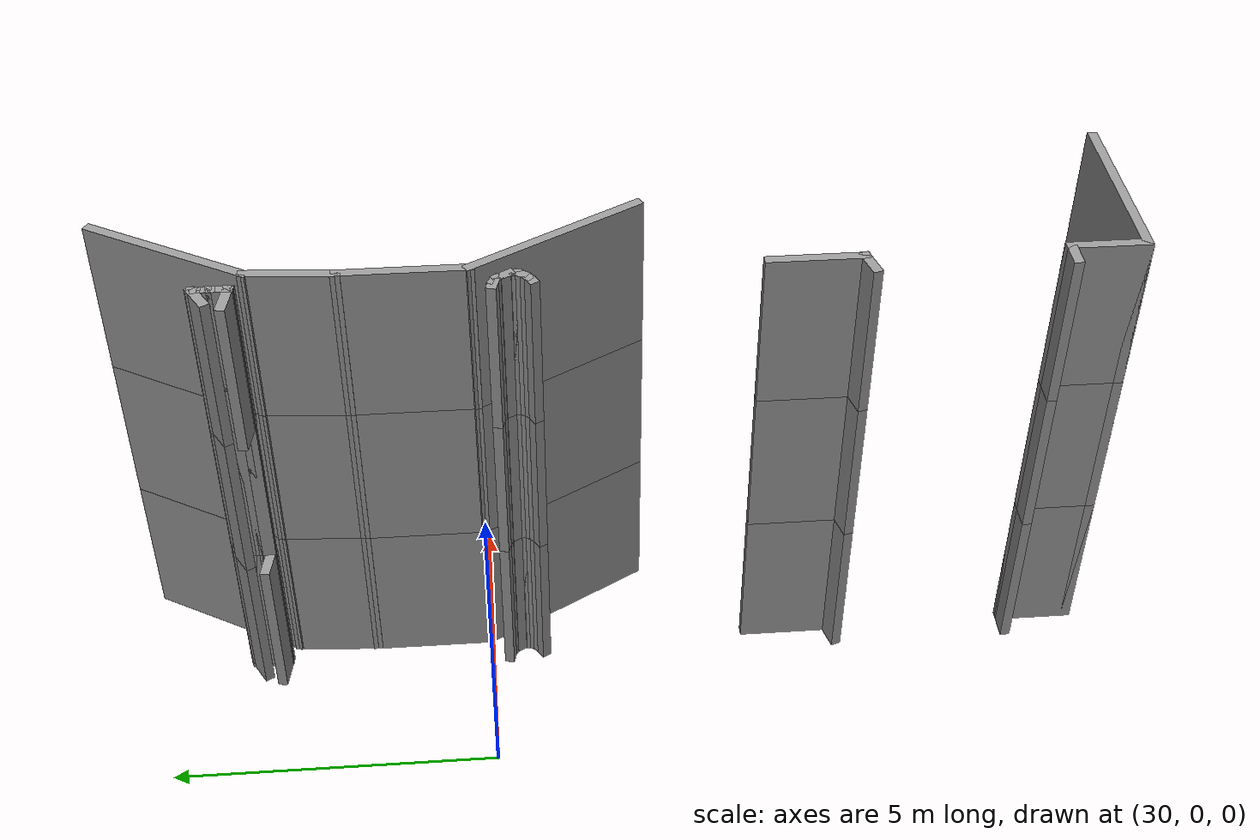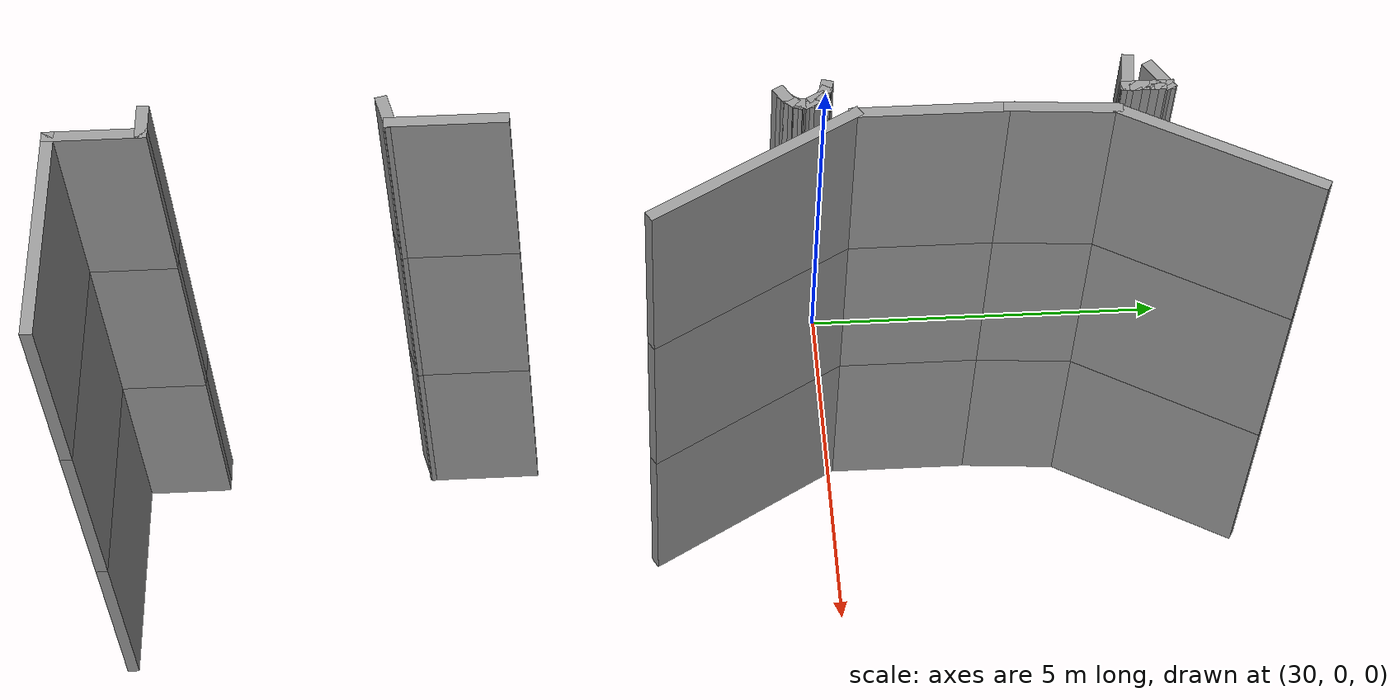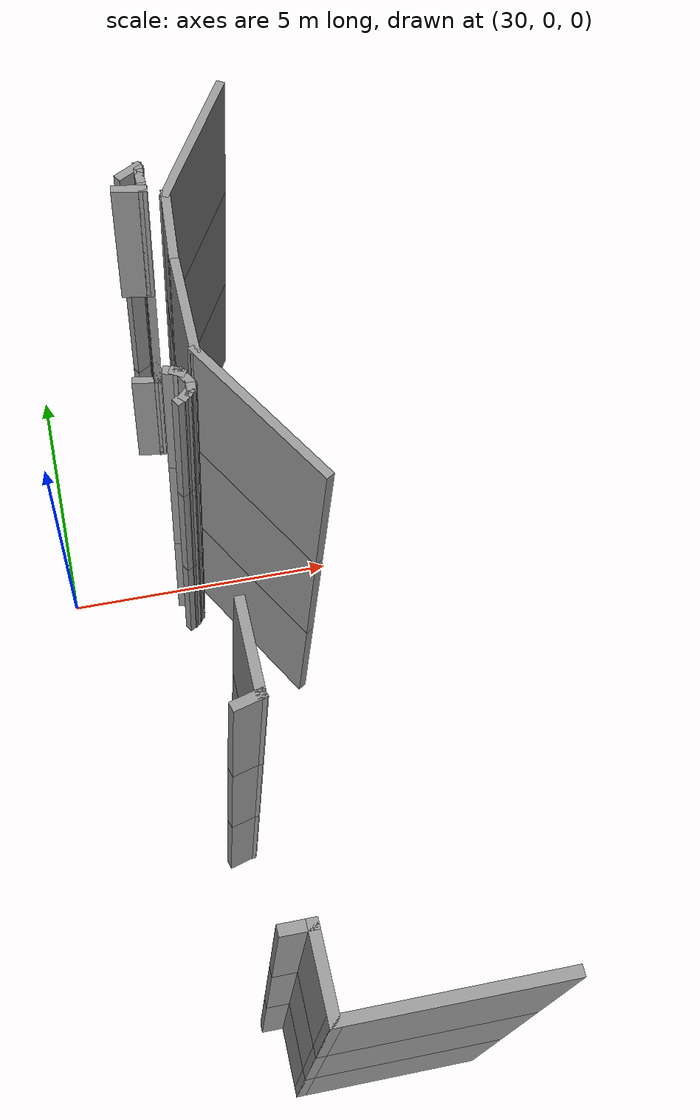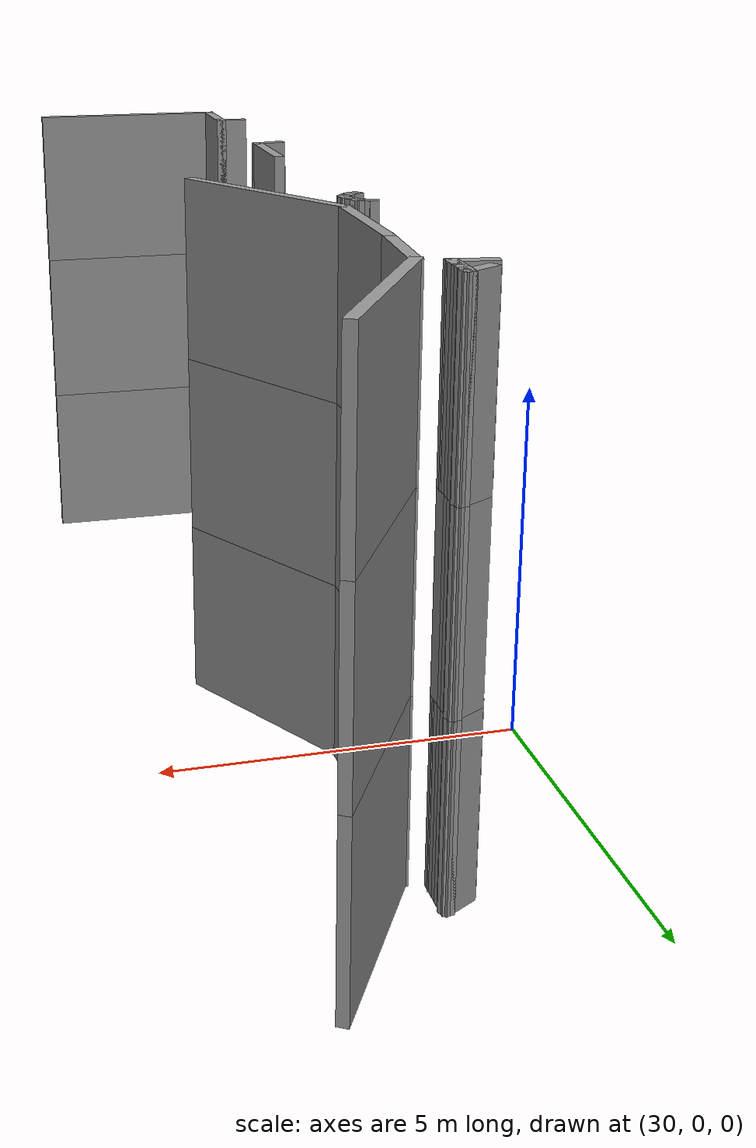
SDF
<sdf version="1.7">
 <model name="mapagazebo">
  <pose>-4.67869 9.01252 0 0 -0 0</pose>
  <link name="Wall_1215">
   <collision name="Wall_1215_Collision">
    <geometry><box><size>1.5 0.15 2.5</size></box></geometry>
    <pose>0 0 1.25 0 -0 0</pose>
   </collision>
   <visual name="Wall_1215_Visual">
    <pose>0 0 1.25 0 -0 0</pose>
    <geometry><box><size>1.5 0.15 2.5</size></box></geometry>
    <material>
     <script><uri>file://media/materials/scripts/gazebo.material</uri><name>Gazebo/Grey</name></script>
     <ambient>1 1 1 1</ambient>
    </material>
    <meta><layer>1</layer></meta>
   </visual>
   <pose>37.0654 -13.8315 2.5 0 -0 -1.5708</pose>
  </link>
  <link name="Wall_1216">
   <collision name="Wall_1216_Collision">
    <geometry><box><size>0.5 0.15 2.5</size></box></geometry>
    <pose>0 0 1.25 0 -0 0</pose>
   </collision>
   <visual name="Wall_1216_Visual">
    <pose>0 0 1.25 0 -0 0</pose>
    <geometry><box><size>0.5 0.15 2.5</size></box></geometry>
    <material>
     <script><uri>file://media/materials/scripts/gazebo.material</uri><name>Gazebo/Grey</name></script>
     <ambient>1 1 1 1</ambient>
    </material>
    <meta><layer>1</layer></meta>
   </visual>
   <pose>36.8964 -14.5518 2.5 0 -0 -2.87979</pose>
  </link>
  <link name="Wall_1218">
   <collision name="Wall_1218_Collision">
    <geometry><box><size>0.5 0.15 2.5</size></box></geometry>
    <pose>0 0 1.25 0 -0 0</pose>
   </collision>
   <visual name="Wall_1218_Visual">
    <pose>0 0 1.25 0 -0 0</pose>
    <geometry><box><size>0.5 0.15 2.5</size></box></geometry>
    <material>
     <script><uri>file://media/materials/scripts/gazebo.material</uri><name>Gazebo/Grey</name></script>
     <ambient>1 1 1 1</ambient>
    </material>
    <meta><layer>1</layer></meta>
   </visual>
   <pose>36.9023 -17.4471 2.5 0 -0 0</pose>
  </link>
  <link name="Wall_1219">
   <collision name="Wall_1219_Collision">
    <geometry><box><size>1.25 0.15 2.5</size></box></geometry>
    <pose>0 0 1.25 0 -0 0</pose>
   </collision>
   <visual name="Wall_1219_Visual">
    <pose>0 0 1.25 0 -0 0</pose>
    <geometry><box><size>1.25 0.15 2.5</size></box></geometry>
    <material>
     <script><uri>file://media/materials/scripts/gazebo.material</uri><name>Gazebo/Grey</name></script>
     <ambient>1 1 1 1</ambient>
    </material>
    <meta><layer>1</layer></meta>
   </visual>
   <pose>37.0773 -17.9971 2.5 0 -0 -1.5708</pose>
  </link>
  <link name="Wall_1220">
   <collision name="Wall_1220_Collision">
    <geometry><box><size>3 0.15 2.5</size></box></geometry>
    <pose>0 0 1.25 0 -0 0</pose>
   </collision>
   <visual name="Wall_1220_Visual">
    <pose>0 0 1.25 0 -0 0</pose>
    <geometry><box><size>3 0.15 2.5</size></box></geometry>
    <material>
     <script><uri>file://media/materials/scripts/gazebo.material</uri><name>Gazebo/Grey</name></script>
     <ambient>1 1 1 1</ambient>
    </material>
    <meta><layer>1</layer></meta>
   </visual>
   <pose>38.5023 -18.5471 2.5 0 -0 0</pose>
  </link>
  <link name="Wall_1287">
   <collision name="Wall_1287_Collision">
    <geometry><box><size>2 0.15 2.5</size></box></geometry>
    <pose>0 0 1.25 0 -0 0</pose>
   </collision>
   <visual name="Wall_1287_Visual">
    <pose>0 0 1.25 0 -0 0</pose>
    <geometry><box><size>2 0.15 2.5</size></box></geometry>
    <material>
     <script><uri>file://media/materials/scripts/gazebo.material</uri><name>Gazebo/Grey</name></script>
     <ambient>1 1 1 1</ambient>
    </material>
    <meta><layer>1</layer></meta>
   </visual>
   <pose>37.215 -8.04146 2.5 0 -0 -1.5708</pose>
  </link>
  <link name="Wall_1288">
   <collision name="Wall_1288_Collision">
    <geometry><box><size>3 0.15 2.5</size></box></geometry>
    <pose>0 0 1.25 0 -0 0</pose>
   </collision>
   <visual name="Wall_1288_Visual">
    <pose>0 0 1.25 0 -0 0</pose>
    <geometry><box><size>3 0.15 2.5</size></box></geometry>
    <material>
     <script><uri>file://media/materials/scripts/gazebo.material</uri><name>Gazebo/Grey</name></script>
     <ambient>1 1 1 1</ambient>
    </material>
    <meta><layer>1</layer></meta>
   </visual>
   <pose>37.9275 -10.2005 2.5 0 -0 -1.0472</pose>
  </link>
  <link name="Wall_1298">
   <collision name="Wall_1298_Collision">
    <geometry><box><size>2.75 0.15 2.5</size></box></geometry>
    <pose>0 0 1.25 0 -0 0</pose>
   </collision>
   <visual name="Wall_1298_Visual">
    <pose>0 0 1.25 0 -0 0</pose>
    <geometry><box><size>2.75 0.15 2.5</size></box></geometry>
    <material>
     <script><uri>file://media/materials/scripts/gazebo.material</uri><name>Gazebo/Grey</name></script>
     <ambient>1 1 1 1</ambient>
    </material>
    <meta><layer>1</layer></meta>
   </visual>
   <pose>37.9565 -4.7161 2.5 0 -0 -2.0944</pose>
  </link>
  <link name="Wall_1299">
   <collision name="Wall_1299_Collision">
    <geometry><box><size>1.4278 0.15 2.5</size></box></geometry>
    <pose>0 0 1.25 0 -0 0</pose>
   </collision>
   <visual name="Wall_1299_Visual">
    <pose>0 0 1.25 0 -0 0</pose>
    <geometry><box><size>1.4278 0.15 2.5</size></box></geometry>
    <material>
     <script><uri>file://media/materials/scripts/gazebo.material</uri><name>Gazebo/Grey</name></script>
     <ambient>1 1 1 1</ambient>
    </material>
    <meta><layer>1</layer></meta>
   </visual>
   <pose>37.2607 -6.4792 2.5 0 -0 -1.64247</pose>
  </link>
  <link name="Wall_1348">
   <collision name="Wall_1348_Collision">
    <geometry><box><size>0.5 0.15 2.5</size></box></geometry>
    <pose>0 0 1.25 0 -0 0</pose>
   </collision>
   <visual name="Wall_1348_Visual">
    <pose>0 0 1.25 0 -0 0</pose>
    <geometry><box><size>0.5 0.15 2.5</size></box></geometry>
    <material>
     <script><uri>file://media/materials/scripts/gazebo.material</uri><name>Gazebo/Grey</name></script>
     <ambient>1 1 1 1</ambient>
    </material>
    <meta><layer>1</layer></meta>
   </visual>
   <pose>36.8116 -5.25746 2.5 0 -0 0.523599</pose>
  </link>
  <link name="Wall_1349">
   <collision name="Wall_1349_Collision">
    <geometry><box><size>0.15 0.15 2.5</size></box></geometry>
    <pose>0 0 1.25 0 -0 0</pose>
   </collision>
   <visual name="Wall_1349_Visual">
    <pose>0 0 1.25 0 -0 0</pose>
    <geometry><box><size>0.15 0.15 2.5</size></box></geometry>
    <material>
     <script><uri>file://media/materials/scripts/gazebo.material</uri><name>Gazebo/Grey</name></script>
     <ambient>1 1 1 1</ambient>
    </material>
    <meta><layer>1</layer></meta>
   </visual>
   <pose>36.9632 -5.16996 2.5 0 -0 0</pose>
  </link>
  <link name="Wall_1350">
   <collision name="Wall_1350_Collision">
    <geometry><box><size>0.25 0.15 2.5</size></box></geometry>
    <pose>0 0 1.25 0 -0 0</pose>
   </collision>
   <visual name="Wall_1350_Visual">
    <pose>0 0 1.25 0 -0 0</pose>
    <geometry><box><size>0.25 0.15 2.5</size></box></geometry>
    <material>
     <script><uri>file://media/materials/scripts/gazebo.material</uri><name>Gazebo/Grey</name></script>
     <ambient>1 1 1 1</ambient>
    </material>
    <meta><layer>1</layer></meta>
   </visual>
   <pose>36.9632 -5.21996 2.5 0 -0 -1.5708</pose>
  </link>
  <link name="Wall_1351">
   <collision name="Wall_1351_Collision">
    <geometry><box><size>0.25 0.15 2.5</size></box></geometry>
    <pose>0 0 1.25 0 -0 0</pose>
   </collision>
   <visual name="Wall_1351_Visual">
    <pose>0 0 1.25 0 -0 0</pose>
    <geometry><box><size>0.25 0.15 2.5</size></box></geometry>
    <material>
     <script><uri>file://media/materials/scripts/gazebo.material</uri><name>Gazebo/Grey</name></script>
     <ambient>1 1 1 1</ambient>
    </material>
    <meta><layer>1</layer></meta>
   </visual>
   <pose>36.9632 -5.31996 2.5 0 -0 -1.5708</pose>
  </link>
  <link name="Wall_1352">
   <collision name="Wall_1352_Collision">
    <geometry><box><size>0.25 0.15 2.5</size></box></geometry>
    <pose>0 0 1.25 0 -0 0</pose>
   </collision>
   <visual name="Wall_1352_Visual">
    <pose>0 0 1.25 0 -0 0</pose>
    <geometry><box><size>0.25 0.15 2.5</size></box></geometry>
    <material>
     <script><uri>file://media/materials/scripts/gazebo.material</uri><name>Gazebo/Grey</name></script>
     <ambient>1 1 1 1</ambient>
    </material>
    <meta><layer>1</layer></meta>
   </visual>
   <pose>36.9632 -5.41996 2.5 0 -0 -1.5708</pose>
  </link>
  <link name="Wall_1353">
   <collision name="Wall_1353_Collision">
    <geometry><box><size>0.25 0.15 2.5</size></box></geometry>
    <pose>0 0 1.25 0 -0 0</pose>
   </collision>
   <visual name="Wall_1353_Visual">
    <pose>0 0 1.25 0 -0 0</pose>
    <geometry><box><size>0.25 0.15 2.5</size></box></geometry>
    <material>
     <script><uri>file://media/materials/scripts/gazebo.material</uri><name>Gazebo/Grey</name></script>
     <ambient>1 1 1 1</ambient>
    </material>
    <meta><layer>1</layer></meta>
   </visual>
   <pose>36.9632 -5.51996 2.5 0 -0 -1.5708</pose>
  </link>
  <link name="Wall_1354">
   <collision name="Wall_1354_Collision">
    <geometry><box><size>0.25 0.15 2.5</size></box></geometry>
    <pose>0 0 1.25 0 -0 0</pose>
   </collision>
   <visual name="Wall_1354_Visual">
    <pose>0 0 1.25 0 -0 0</pose>
    <geometry><box><size>0.25 0.15 2.5</size></box></geometry>
    <material>
     <script><uri>file://media/materials/scripts/gazebo.material</uri><name>Gazebo/Grey</name></script>
     <ambient>1 1 1 1</ambient>
    </material>
    <meta><layer>1</layer></meta>
   </visual>
   <pose>36.9632 -5.61996 2.5 0 -0 -1.5708</pose>
  </link>
  <link name="Wall_1355">
   <collision name="Wall_1355_Collision">
    <geometry><box><size>0.15 0.15 2.5</size></box></geometry>
    <pose>0 0 1.25 0 -0 0</pose>
   </collision>
   <visual name="Wall_1355_Visual">
    <pose>0 0 1.25 0 -0 0</pose>
    <geometry><box><size>0.15 0.15 2.5</size></box></geometry>
    <material>
     <script><uri>file://media/materials/scripts/gazebo.material</uri><name>Gazebo/Grey</name></script>
     <ambient>1 1 1 1</ambient>
    </material>
    <meta><layer>1</layer></meta>
   </visual>
   <pose>36.9632 -5.66996 2.5 0 -0 0</pose>
  </link>
  <link name="Wall_1356">
   <collision name="Wall_1356_Collision">
    <geometry><box><size>0.15 0.15 2.5</size></box></geometry>
    <pose>0 0 1.25 0 -0 0</pose>
   </collision>
   <visual name="Wall_1356_Visual">
    <pose>0 0 1.25 0 -0 0</pose>
    <geometry><box><size>0.15 0.15 2.5</size></box></geometry>
    <material>
     <script><uri>file://media/materials/scripts/gazebo.material</uri><name>Gazebo/Grey</name></script>
     <ambient>1 1 1 1</ambient>
    </material>
    <meta><layer>1</layer></meta>
   </visual>
   <pose>36.9632 -5.66996 2.5 0 -0 0</pose>
  </link>
  <link name="Wall_1365">
   <collision name="Wall_1365_Collision">
    <geometry><box><size>0.25 0.15 2.5</size></box></geometry>
    <pose>0 0 1.25 0 -0 0</pose>
   </collision>
   <visual name="Wall_1365_Visual">
    <pose>0 0 1.25 0 -0 0</pose>
    <geometry><box><size>0.25 0.15 2.5</size></box></geometry>
    <material>
     <script><uri>file://media/materials/scripts/gazebo.material</uri><name>Gazebo/Grey</name></script>
     <ambient>1 1 1 1</ambient>
    </material>
    <meta><layer>1</layer></meta>
   </visual>
   <pose>36.802 -9.28459 2.5 0 -0 -0.261799</pose>
  </link>
  <link name="Wall_1366">
   <collision name="Wall_1366_Collision">
    <geometry><box><size>0.25 0.15 2.5</size></box></geometry>
    <pose>0 0 1.25 0 -0 0</pose>
   </collision>
   <visual name="Wall_1366_Visual">
    <pose>0 0 1.25 0 -0 0</pose>
    <geometry><box><size>0.25 0.15 2.5</size></box></geometry>
    <material>
     <script><uri>file://media/materials/scripts/gazebo.material</uri><name>Gazebo/Grey</name></script>
     <ambient>1 1 1 1</ambient>
    </material>
    <meta><layer>1</layer></meta>
   </visual>
   <pose>36.8936 -9.32253 2.5 0 -0 -0.523599</pose>
  </link>
  <link name="Wall_1367">
   <collision name="Wall_1367_Collision">
    <geometry><box><size>0.25 0.15 2.5</size></box></geometry>
    <pose>0 0 1.25 0 -0 0</pose>
   </collision>
   <visual name="Wall_1367_Visual">
    <pose>0 0 1.25 0 -0 0</pose>
    <geometry><box><size>0.25 0.15 2.5</size></box></geometry>
    <material>
     <script><uri>file://media/materials/scripts/gazebo.material</uri><name>Gazebo/Grey</name></script>
     <ambient>1 1 1 1</ambient>
    </material>
    <meta><layer>1</layer></meta>
   </visual>
   <pose>36.9619 -9.39083 2.5 0 -0 -1.0472</pose>
  </link>
  <link name="Wall_1368">
   <collision name="Wall_1368_Collision">
    <geometry><box><size>0.25 0.15 2.5</size></box></geometry>
    <pose>0 0 1.25 0 -0 0</pose>
   </collision>
   <visual name="Wall_1368_Visual">
    <pose>0 0 1.25 0 -0 0</pose>
    <geometry><box><size>0.25 0.15 2.5</size></box></geometry>
    <material>
     <script><uri>file://media/materials/scripts/gazebo.material</uri><name>Gazebo/Grey</name></script>
     <ambient>1 1 1 1</ambient>
    </material>
    <meta><layer>1</layer></meta>
   </visual>
   <pose>37.0119 -9.47744 2.5 0 -0 -1.0472</pose>
  </link>
  <link name="Wall_1369">
   <collision name="Wall_1369_Collision">
    <geometry><box><size>0.25 0.15 2.5</size></box></geometry>
    <pose>0 0 1.25 0 -0 0</pose>
   </collision>
   <visual name="Wall_1369_Visual">
    <pose>0 0 1.25 0 -0 0</pose>
    <geometry><box><size>0.25 0.15 2.5</size></box></geometry>
    <material>
     <script><uri>file://media/materials/scripts/gazebo.material</uri><name>Gazebo/Grey</name></script>
     <ambient>1 1 1 1</ambient>
    </material>
    <meta><layer>1</layer></meta>
   </visual>
   <pose>37.0369 -9.57074 2.5 0 -0 -1.5708</pose>
  </link>
  <link name="Wall_1370">
   <collision name="Wall_1370_Collision">
    <geometry><box><size>0.15 0.15 2.5</size></box></geometry>
    <pose>0 0 1.25 0 -0 0</pose>
   </collision>
   <visual name="Wall_1370_Visual">
    <pose>0 0 1.25 0 -0 0</pose>
    <geometry><box><size>0.15 0.15 2.5</size></box></geometry>
    <material>
     <script><uri>file://media/materials/scripts/gazebo.material</uri><name>Gazebo/Grey</name></script>
     <ambient>1 1 1 1</ambient>
    </material>
    <meta><layer>1</layer></meta>
   </visual>
   <pose>37.0369 -9.62074 2.5 0 -0 0</pose>
  </link>
  <link name="Wall_1371">
   <collision name="Wall_1371_Collision">
    <geometry><box><size>0.25 0.15 2.5</size></box></geometry>
    <pose>0 0 1.25 0 -0 0</pose>
   </collision>
   <visual name="Wall_1371_Visual">
    <pose>0 0 1.25 0 -0 0</pose>
    <geometry><box><size>0.25 0.15 2.5</size></box></geometry>
    <material>
     <script><uri>file://media/materials/scripts/gazebo.material</uri><name>Gazebo/Grey</name></script>
     <ambient>1 1 1 1</ambient>
    </material>
    <meta><layer>1</layer></meta>
   </visual>
   <pose>37.0119 -9.66404 2.5 0 -0 -2.0944</pose>
  </link>
  <link name="Wall_1372">
   <collision name="Wall_1372_Collision">
    <geometry><box><size>0.25 0.15 2.5</size></box></geometry>
    <pose>0 0 1.25 0 -0 0</pose>
   </collision>
   <visual name="Wall_1372_Visual">
    <pose>0 0 1.25 0 -0 0</pose>
    <geometry><box><size>0.25 0.15 2.5</size></box></geometry>
    <material>
     <script><uri>file://media/materials/scripts/gazebo.material</uri><name>Gazebo/Grey</name></script>
     <ambient>1 1 1 1</ambient>
    </material>
    <meta><layer>1</layer></meta>
   </visual>
   <pose>36.9515 -9.7427 2.5 0 -0 -2.35619</pose>
  </link>
  <link name="Wall_1373">
   <collision name="Wall_1373_Collision">
    <geometry><box><size>0.25 0.15 2.5</size></box></geometry>
    <pose>0 0 1.25 0 -0 0</pose>
   </collision>
   <visual name="Wall_1373_Visual">
    <pose>0 0 1.25 0 -0 0</pose>
    <geometry><box><size>0.25 0.15 2.5</size></box></geometry>
    <material>
     <script><uri>file://media/materials/scripts/gazebo.material</uri><name>Gazebo/Grey</name></script>
     <ambient>1 1 1 1</ambient>
    </material>
    <meta><layer>1</layer></meta>
   </visual>
   <pose>36.8729 -9.80305 2.5 0 -0 -2.61799</pose>
  </link>
  <link name="Wall_1839">
   <collision name="Wall_1839_Collision">
    <geometry><box><size>1.5 0.15 2.5</size></box></geometry>
    <pose>0 0 1.25 0 -0 0</pose>
   </collision>
   <visual name="Wall_1839_Visual">
    <pose>0 0 1.25 0 -0 0</pose>
    <geometry><box><size>1.5 0.15 2.5</size></box></geometry>
    <material>
     <script><uri>file://media/materials/scripts/gazebo.material</uri><name>Gazebo/Grey</name></script>
     <ambient>1 1 1 1</ambient>
    </material>
    <meta><layer>2</layer></meta>
   </visual>
   <pose>37.0654 -13.8315 5 0 -0 -1.5708</pose>
  </link>
  <link name="Wall_1840">
   <collision name="Wall_1840_Collision">
    <geometry><box><size>0.5 0.15 2.5</size></box></geometry>
    <pose>0 0 1.25 0 -0 0</pose>
   </collision>
   <visual name="Wall_1840_Visual">
    <pose>0 0 1.25 0 -0 0</pose>
    <geometry><box><size>0.5 0.15 2.5</size></box></geometry>
    <material>
     <script><uri>file://media/materials/scripts/gazebo.material</uri><name>Gazebo/Grey</name></script>
     <ambient>1 1 1 1</ambient>
    </material>
    <meta><layer>2</layer></meta>
   </visual>
   <pose>36.8964 -14.5518 5 0 -0 -2.87979</pose>
  </link>
  <link name="Wall_1842">
   <collision name="Wall_1842_Collision">
    <geometry><box><size>0.5 0.15 2.5</size></box></geometry>
    <pose>0 0 1.25 0 -0 0</pose>
   </collision>
   <visual name="Wall_1842_Visual">
    <pose>0 0 1.25 0 -0 0</pose>
    <geometry><box><size>0.5 0.15 2.5</size></box></geometry>
    <material>
     <script><uri>file://media/materials/scripts/gazebo.material</uri><name>Gazebo/Grey</name></script>
     <ambient>1 1 1 1</ambient>
    </material>
    <meta><layer>2</layer></meta>
   </visual>
   <pose>36.9023 -17.4471 5 0 -0 0</pose>
  </link>
  <link name="Wall_1843">
   <collision name="Wall_1843_Collision">
    <geometry><box><size>1.25 0.15 2.5</size></box></geometry>
    <pose>0 0 1.25 0 -0 0</pose>
   </collision>
   <visual name="Wall_1843_Visual">
    <pose>0 0 1.25 0 -0 0</pose>
    <geometry><box><size>1.25 0.15 2.5</size></box></geometry>
    <material>
     <script><uri>file://media/materials/scripts/gazebo.material</uri><name>Gazebo/Grey</name></script>
     <ambient>1 1 1 1</ambient>
    </material>
    <meta><layer>2</layer></meta>
   </visual>
   <pose>37.0773 -17.9971 5 0 -0 -1.5708</pose>
  </link>
  <link name="Wall_1844">
   <collision name="Wall_1844_Collision">
    <geometry><box><size>3 0.15 2.5</size></box></geometry>
    <pose>0 0 1.25 0 -0 0</pose>
   </collision>
   <visual name="Wall_1844_Visual">
    <pose>0 0 1.25 0 -0 0</pose>
    <geometry><box><size>3 0.15 2.5</size></box></geometry>
    <material>
     <script><uri>file://media/materials/scripts/gazebo.material</uri><name>Gazebo/Grey</name></script>
     <ambient>1 1 1 1</ambient>
    </material>
    <meta><layer>2</layer></meta>
   </visual>
   <pose>38.5023 -18.5471 5 0 -0 0</pose>
  </link>
  <link name="Wall_1911">
   <collision name="Wall_1911_Collision">
    <geometry><box><size>2 0.15 2.5</size></box></geometry>
    <pose>0 0 1.25 0 -0 0</pose>
   </collision>
   <visual name="Wall_1911_Visual">
    <pose>0 0 1.25 0 -0 0</pose>
    <geometry><box><size>2 0.15 2.5</size></box></geometry>
    <material>
     <script><uri>file://media/materials/scripts/gazebo.material</uri><name>Gazebo/Grey</name></script>
     <ambient>1 1 1 1</ambient>
    </material>
    <meta><layer>2</layer></meta>
   </visual>
   <pose>37.215 -8.04146 5 0 -0 -1.5708</pose>
  </link>
  <link name="Wall_1912">
   <collision name="Wall_1912_Collision">
    <geometry><box><size>3 0.15 2.5</size></box></geometry>
    <pose>0 0 1.25 0 -0 0</pose>
   </collision>
   <visual name="Wall_1912_Visual">
    <pose>0 0 1.25 0 -0 0</pose>
    <geometry><box><size>3 0.15 2.5</size></box></geometry>
    <material>
     <script><uri>file://media/materials/scripts/gazebo.material</uri><name>Gazebo/Grey</name></script>
     <ambient>1 1 1 1</ambient>
    </material>
    <meta><layer>2</layer></meta>
   </visual>
   <pose>37.9275 -10.2005 5 0 -0 -1.0472</pose>
  </link>
  <link name="Wall_1922">
   <collision name="Wall_1922_Collision">
    <geometry><box><size>2.75 0.15 2.5</size></box></geometry>
    <pose>0 0 1.25 0 -0 0</pose>
   </collision>
   <visual name="Wall_1922_Visual">
    <pose>0 0 1.25 0 -0 0</pose>
    <geometry><box><size>2.75 0.15 2.5</size></box></geometry>
    <material>
     <script><uri>file://media/materials/scripts/gazebo.material</uri><name>Gazebo/Grey</name></script>
     <ambient>1 1 1 1</ambient>
    </material>
    <meta><layer>2</layer></meta>
   </visual>
   <pose>37.9565 -4.7161 5 0 -0 -2.0944</pose>
  </link>
  <link name="Wall_1923">
   <collision name="Wall_1923_Collision">
    <geometry><box><size>1.4278 0.15 2.5</size></box></geometry>
    <pose>0 0 1.25 0 -0 0</pose>
   </collision>
   <visual name="Wall_1923_Visual">
    <pose>0 0 1.25 0 -0 0</pose>
    <geometry><box><size>1.4278 0.15 2.5</size></box></geometry>
    <material>
     <script><uri>file://media/materials/scripts/gazebo.material</uri><name>Gazebo/Grey</name></script>
     <ambient>1 1 1 1</ambient>
    </material>
    <meta><layer>2</layer></meta>
   </visual>
   <pose>37.2607 -6.4792 5 0 -0 -1.64247</pose>
  </link>
  <link name="Wall_1972">
   <collision name="Wall_1972_Collision">
    <geometry><box><size>0.5 0.15 2.5</size></box></geometry>
    <pose>0 0 1.25 0 -0 0</pose>
   </collision>
   <visual name="Wall_1972_Visual">
    <pose>0 0 1.25 0 -0 0</pose>
    <geometry><box><size>0.5 0.15 2.5</size></box></geometry>
    <material>
     <script><uri>file://media/materials/scripts/gazebo.material</uri><name>Gazebo/Grey</name></script>
     <ambient>1 1 1 1</ambient>
    </material>
    <meta><layer>2</layer></meta>
   </visual>
   <pose>36.8116 -5.25746 5 0 -0 0.523599</pose>
  </link>
  <link name="Wall_1973">
   <collision name="Wall_1973_Collision">
    <geometry><box><size>0.15 0.15 2.5</size></box></geometry>
    <pose>0 0 1.25 0 -0 0</pose>
   </collision>
   <visual name="Wall_1973_Visual">
    <pose>0 0 1.25 0 -0 0</pose>
    <geometry><box><size>0.15 0.15 2.5</size></box></geometry>
    <material>
     <script><uri>file://media/materials/scripts/gazebo.material</uri><name>Gazebo/Grey</name></script>
     <ambient>1 1 1 1</ambient>
    </material>
    <meta><layer>2</layer></meta>
   </visual>
   <pose>36.9632 -5.16996 5 0 -0 0</pose>
  </link>
  <link name="Wall_1974">
   <collision name="Wall_1974_Collision">
    <geometry><box><size>0.25 0.15 2.5</size></box></geometry>
    <pose>0 0 1.25 0 -0 0</pose>
   </collision>
   <visual name="Wall_1974_Visual">
    <pose>0 0 1.25 0 -0 0</pose>
    <geometry><box><size>0.25 0.15 2.5</size></box></geometry>
    <material>
     <script><uri>file://media/materials/scripts/gazebo.material</uri><name>Gazebo/Grey</name></script>
     <ambient>1 1 1 1</ambient>
    </material>
    <meta><layer>2</layer></meta>
   </visual>
   <pose>36.9632 -5.21996 5 0 -0 -1.5708</pose>
  </link>
  <link name="Wall_1975">
   <collision name="Wall_1975_Collision">
    <geometry><box><size>0.25 0.15 2.5</size></box></geometry>
    <pose>0 0 1.25 0 -0 0</pose>
   </collision>
   <visual name="Wall_1975_Visual">
    <pose>0 0 1.25 0 -0 0</pose>
    <geometry><box><size>0.25 0.15 2.5</size></box></geometry>
    <material>
     <script><uri>file://media/materials/scripts/gazebo.material</uri><name>Gazebo/Grey</name></script>
     <ambient>1 1 1 1</ambient>
    </material>
    <meta><layer>2</layer></meta>
   </visual>
   <pose>36.9632 -5.31996 5 0 -0 -1.5708</pose>
  </link>
  <link name="Wall_1976">
   <collision name="Wall_1976_Collision">
    <geometry><box><size>0.25 0.15 2.5</size></box></geometry>
    <pose>0 0 1.25 0 -0 0</pose>
   </collision>
   <visual name="Wall_1976_Visual">
    <pose>0 0 1.25 0 -0 0</pose>
    <geometry><box><size>0.25 0.15 2.5</size></box></geometry>
    <material>
     <script><uri>file://media/materials/scripts/gazebo.material</uri><name>Gazebo/Grey</name></script>
     <ambient>1 1 1 1</ambient>
    </material>
    <meta><layer>2</layer></meta>
   </visual>
   <pose>36.9632 -5.41996 5 0 -0 -1.5708</pose>
  </link>
  <link name="Wall_1977">
   <collision name="Wall_1977_Collision">
    <geometry><box><size>0.25 0.15 2.5</size></box></geometry>
    <pose>0 0 1.25 0 -0 0</pose>
   </collision>
   <visual name="Wall_1977_Visual">
    <pose>0 0 1.25 0 -0 0</pose>
    <geometry><box><size>0.25 0.15 2.5</size></box></geometry>
    <material>
     <script><uri>file://media/materials/scripts/gazebo.material</uri><name>Gazebo/Grey</name></script>
     <ambient>1 1 1 1</ambient>
    </material>
    <meta><layer>2</layer></meta>
   </visual>
   <pose>36.9632 -5.51996 5 0 -0 -1.5708</pose>
  </link>
  <link name="Wall_1978">
   <collision name="Wall_1978_Collision">
    <geometry><box><size>0.25 0.15 2.5</size></box></geometry>
    <pose>0 0 1.25 0 -0 0</pose>
   </collision>
   <visual name="Wall_1978_Visual">
    <pose>0 0 1.25 0 -0 0</pose>
    <geometry><box><size>0.25 0.15 2.5</size></box></geometry>
    <material>
     <script><uri>file://media/materials/scripts/gazebo.material</uri><name>Gazebo/Grey</name></script>
     <ambient>1 1 1 1</ambient>
    </material>
    <meta><layer>2</layer></meta>
   </visual>
   <pose>36.9632 -5.61996 5 0 -0 -1.5708</pose>
  </link>
  <link name="Wall_1979">
   <collision name="Wall_1979_Collision">
    <geometry><box><size>0.15 0.15 2.5</size></box></geometry>
    <pose>0 0 1.25 0 -0 0</pose>
   </collision>
   <visual name="Wall_1979_Visual">
    <pose>0 0 1.25 0 -0 0</pose>
    <geometry><box><size>0.15 0.15 2.5</size></box></geometry>
    <material>
     <script><uri>file://media/materials/scripts/gazebo.material</uri><name>Gazebo/Grey</name></script>
     <ambient>1 1 1 1</ambient>
    </material>
    <meta><layer>2</layer></meta>
   </visual>
   <pose>36.9632 -5.66996 5 0 -0 0</pose>
  </link>
  <link name="Wall_1980">
   <collision name="Wall_1980_Collision">
    <geometry><box><size>0.15 0.15 2.5</size></box></geometry>
    <pose>0 0 1.25 0 -0 0</pose>
   </collision>
   <visual name="Wall_1980_Visual">
    <pose>0 0 1.25 0 -0 0</pose>
    <geometry><box><size>0.15 0.15 2.5</size></box></geometry>
    <material>
     <script><uri>file://media/materials/scripts/gazebo.material</uri><name>Gazebo/Grey</name></script>
     <ambient>1 1 1 1</ambient>
    </material>
    <meta><layer>2</layer></meta>
   </visual>
   <pose>36.9632 -5.66996 5 0 -0 0</pose>
  </link>
  <link name="Wall_1981">
   <collision name="Wall_1981_Collision">
    <geometry><box><size>0.579191 0.15 2.5</size></box></geometry>
    <pose>0 0 1.25 0 -0 0</pose>
   </collision>
   <visual name="Wall_1981_Visual">
    <pose>0 0 1.25 0 -0 0</pose>
    <geometry><box><size>0.579191 0.15 2.5</size></box></geometry>
    <material>
     <script><uri>file://media/materials/scripts/gazebo.material</uri><name>Gazebo/Grey</name></script>
     <ambient>1 1 1 1</ambient>
    </material>
    <meta><layer>2</layer></meta>
   </visual>
   <pose>36.7513 -5.63612 5 0 -0 2.98322</pose>
  </link>
  <link name="Wall_1989">
   <collision name="Wall_1989_Collision">
    <geometry><box><size>0.25 0.15 2.5</size></box></geometry>
    <pose>0 0 1.25 0 -0 0</pose>
   </collision>
   <visual name="Wall_1989_Visual">
    <pose>0 0 1.25 0 -0 0</pose>
    <geometry><box><size>0.25 0.15 2.5</size></box></geometry>
    <material>
     <script><uri>file://media/materials/scripts/gazebo.material</uri><name>Gazebo/Grey</name></script>
     <ambient>1 1 1 1</ambient>
    </material>
    <meta><layer>2</layer></meta>
   </visual>
   <pose>36.802 -9.28459 5 0 -0 -0.261799</pose>
  </link>
  <link name="Wall_1990">
   <collision name="Wall_1990_Collision">
    <geometry><box><size>0.25 0.15 2.5</size></box></geometry>
    <pose>0 0 1.25 0 -0 0</pose>
   </collision>
   <visual name="Wall_1990_Visual">
    <pose>0 0 1.25 0 -0 0</pose>
    <geometry><box><size>0.25 0.15 2.5</size></box></geometry>
    <material>
     <script><uri>file://media/materials/scripts/gazebo.material</uri><name>Gazebo/Grey</name></script>
     <ambient>1 1 1 1</ambient>
    </material>
    <meta><layer>2</layer></meta>
   </visual>
   <pose>36.8936 -9.32253 5 0 -0 -0.523599</pose>
  </link>
  <link name="Wall_1991">
   <collision name="Wall_1991_Collision">
    <geometry><box><size>0.25 0.15 2.5</size></box></geometry>
    <pose>0 0 1.25 0 -0 0</pose>
   </collision>
   <visual name="Wall_1991_Visual">
    <pose>0 0 1.25 0 -0 0</pose>
    <geometry><box><size>0.25 0.15 2.5</size></box></geometry>
    <material>
     <script><uri>file://media/materials/scripts/gazebo.material</uri><name>Gazebo/Grey</name></script>
     <ambient>1 1 1 1</ambient>
    </material>
    <meta><layer>2</layer></meta>
   </visual>
   <pose>36.9619 -9.39083 5 0 -0 -1.0472</pose>
  </link>
  <link name="Wall_1992">
   <collision name="Wall_1992_Collision">
    <geometry><box><size>0.25 0.15 2.5</size></box></geometry>
    <pose>0 0 1.25 0 -0 0</pose>
   </collision>
   <visual name="Wall_1992_Visual">
    <pose>0 0 1.25 0 -0 0</pose>
    <geometry><box><size>0.25 0.15 2.5</size></box></geometry>
    <material>
     <script><uri>file://media/materials/scripts/gazebo.material</uri><name>Gazebo/Grey</name></script>
     <ambient>1 1 1 1</ambient>
    </material>
    <meta><layer>2</layer></meta>
   </visual>
   <pose>37.0119 -9.47744 5 0 -0 -1.0472</pose>
  </link>
  <link name="Wall_1993">
   <collision name="Wall_1993_Collision">
    <geometry><box><size>0.25 0.15 2.5</size></box></geometry>
    <pose>0 0 1.25 0 -0 0</pose>
   </collision>
   <visual name="Wall_1993_Visual">
    <pose>0 0 1.25 0 -0 0</pose>
    <geometry><box><size>0.25 0.15 2.5</size></box></geometry>
    <material>
     <script><uri>file://media/materials/scripts/gazebo.material</uri><name>Gazebo/Grey</name></script>
     <ambient>1 1 1 1</ambient>
    </material>
    <meta><layer>2</layer></meta>
   </visual>
   <pose>37.0369 -9.57074 5 0 -0 -1.5708</pose>
  </link>
  <link name="Wall_1994">
   <collision name="Wall_1994_Collision">
    <geometry><box><size>0.15 0.15 2.5</size></box></geometry>
    <pose>0 0 1.25 0 -0 0</pose>
   </collision>
   <visual name="Wall_1994_Visual">
    <pose>0 0 1.25 0 -0 0</pose>
    <geometry><box><size>0.15 0.15 2.5</size></box></geometry>
    <material>
     <script><uri>file://media/materials/scripts/gazebo.material</uri><name>Gazebo/Grey</name></script>
     <ambient>1 1 1 1</ambient>
    </material>
    <meta><layer>2</layer></meta>
   </visual>
   <pose>37.0369 -9.62074 5 0 -0 0</pose>
  </link>
  <link name="Wall_1995">
   <collision name="Wall_1995_Collision">
    <geometry><box><size>0.25 0.15 2.5</size></box></geometry>
    <pose>0 0 1.25 0 -0 0</pose>
   </collision>
   <visual name="Wall_1995_Visual">
    <pose>0 0 1.25 0 -0 0</pose>
    <geometry><box><size>0.25 0.15 2.5</size></box></geometry>
    <material>
     <script><uri>file://media/materials/scripts/gazebo.material</uri><name>Gazebo/Grey</name></script>
     <ambient>1 1 1 1</ambient>
    </material>
    <meta><layer>2</layer></meta>
   </visual>
   <pose>37.0119 -9.66404 5 0 -0 -2.0944</pose>
  </link>
  <link name="Wall_1996">
   <collision name="Wall_1996_Collision">
    <geometry><box><size>0.25 0.15 2.5</size></box></geometry>
    <pose>0 0 1.25 0 -0 0</pose>
   </collision>
   <visual name="Wall_1996_Visual">
    <pose>0 0 1.25 0 -0 0</pose>
    <geometry><box><size>0.25 0.15 2.5</size></box></geometry>
    <material>
     <script><uri>file://media/materials/scripts/gazebo.material</uri><name>Gazebo/Grey</name></script>
     <ambient>1 1 1 1</ambient>
    </material>
    <meta><layer>2</layer></meta>
   </visual>
   <pose>36.9515 -9.7427 5 0 -0 -2.35619</pose>
  </link>
  <link name="Wall_1997">
   <collision name="Wall_1997_Collision">
    <geometry><box><size>0.25 0.15 2.5</size></box></geometry>
    <pose>0 0 1.25 0 -0 0</pose>
   </collision>
   <visual name="Wall_1997_Visual">
    <pose>0 0 1.25 0 -0 0</pose>
    <geometry><box><size>0.25 0.15 2.5</size></box></geometry>
    <material>
     <script><uri>file://media/materials/scripts/gazebo.material</uri><name>Gazebo/Grey</name></script>
     <ambient>1 1 1 1</ambient>
    </material>
    <meta><layer>2</layer></meta>
   </visual>
   <pose>36.8729 -9.80305 5 0 -0 -2.61799</pose>
  </link>
  <link name="Wall_548">
   <collision name="Wall_548_Collision">
    <geometry><box><size>1.5 0.15 2.5</size></box></geometry>
    <pose>0 0 1.25 0 -0 0</pose>
   </collision>
   <visual name="Wall_548_Visual">
    <pose>0 0 1.25 0 -0 0</pose>
    <geometry><box><size>1.5 0.15 2.5</size></box></geometry>
    <material>
     <script><uri>file://media/materials/scripts/gazebo.material</uri><name>Gazebo/Grey</name></script>
     <ambient>1 1 1 1</ambient>
    </material>
    <meta><layer>0</layer></meta>
   </visual>
   <pose>37.0654 -13.8315 0 0 -0 -1.5708</pose>
  </link>
  <link name="Wall_549">
   <collision name="Wall_549_Collision">
    <geometry><box><size>0.5 0.15 2.5</size></box></geometry>
    <pose>0 0 1.25 0 -0 0</pose>
   </collision>
   <visual name="Wall_549_Visual">
    <pose>0 0 1.25 0 -0 0</pose>
    <geometry><box><size>0.5 0.15 2.5</size></box></geometry>
    <material>
     <script><uri>file://media/materials/scripts/gazebo.material</uri><name>Gazebo/Grey</name></script>
     <ambient>1 1 1 1</ambient>
    </material>
    <meta><layer>0</layer></meta>
   </visual>
   <pose>36.8964 -14.5518 0 0 -0 -2.87979</pose>
  </link>
  <link name="Wall_552">
   <collision name="Wall_552_Collision">
    <geometry><box><size>0.5 0.15 2.5</size></box></geometry>
    <pose>0 0 1.25 0 -0 0</pose>
   </collision>
   <visual name="Wall_552_Visual">
    <pose>0 0 1.25 0 -0 0</pose>
    <geometry><box><size>0.5 0.15 2.5</size></box></geometry>
    <material>
     <script><uri>file://media/materials/scripts/gazebo.material</uri><name>Gazebo/Grey</name></script>
     <ambient>1 1 1 1</ambient>
    </material>
    <meta><layer>0</layer></meta>
   </visual>
   <pose>36.9023 -17.4471 0 0 -0 0</pose>
  </link>
  <link name="Wall_553">
   <collision name="Wall_553_Collision">
    <geometry><box><size>1.25 0.15 2.5</size></box></geometry>
    <pose>0 0 1.25 0 -0 0</pose>
   </collision>
   <visual name="Wall_553_Visual">
    <pose>0 0 1.25 0 -0 0</pose>
    <geometry><box><size>1.25 0.15 2.5</size></box></geometry>
    <material>
     <script><uri>file://media/materials/scripts/gazebo.material</uri><name>Gazebo/Grey</name></script>
     <ambient>1 1 1 1</ambient>
    </material>
    <meta><layer>0</layer></meta>
   </visual>
   <pose>37.0773 -17.9971 0 0 -0 -1.5708</pose>
  </link>
  <link name="Wall_554">
   <collision name="Wall_554_Collision">
    <geometry><box><size>3 0.15 2.5</size></box></geometry>
    <pose>0 0 1.25 0 -0 0</pose>
   </collision>
   <visual name="Wall_554_Visual">
    <pose>0 0 1.25 0 -0 0</pose>
    <geometry><box><size>3 0.15 2.5</size></box></geometry>
    <material>
     <script><uri>file://media/materials/scripts/gazebo.material</uri><name>Gazebo/Grey</name></script>
     <ambient>1 1 1 1</ambient>
    </material>
    <meta><layer>0</layer></meta>
   </visual>
   <pose>38.5023 -18.5471 0 0 -0 0</pose>
  </link>
  <link name="Wall_649">
   <collision name="Wall_649_Collision">
    <geometry><box><size>2 0.15 2.5</size></box></geometry>
    <pose>0 0 1.25 0 -0 0</pose>
   </collision>
   <visual name="Wall_649_Visual">
    <pose>0 0 1.25 0 -0 0</pose>
    <geometry><box><size>2 0.15 2.5</size></box></geometry>
    <material>
     <script><uri>file://media/materials/scripts/gazebo.material</uri><name>Gazebo/Grey</name></script>
     <ambient>1 1 1 1</ambient>
    </material>
    <meta><layer>0</layer></meta>
   </visual>
   <pose>37.215 -8.04146 0 0 -0 -1.5708</pose>
  </link>
  <link name="Wall_650">
   <collision name="Wall_650_Collision">
    <geometry><box><size>3 0.15 2.5</size></box></geometry>
    <pose>0 0 1.25 0 -0 0</pose>
   </collision>
   <visual name="Wall_650_Visual">
    <pose>0 0 1.25 0 -0 0</pose>
    <geometry><box><size>3 0.15 2.5</size></box></geometry>
    <material>
     <script><uri>file://media/materials/scripts/gazebo.material</uri><name>Gazebo/Grey</name></script>
     <ambient>1 1 1 1</ambient>
    </material>
    <meta><layer>0</layer></meta>
   </visual>
   <pose>37.9275 -10.2005 0 0 -0 -1.0472</pose>
  </link>
  <link name="Wall_660">
   <collision name="Wall_660_Collision">
    <geometry><box><size>2.75 0.15 2.5</size></box></geometry>
    <pose>0 0 1.25 0 -0 0</pose>
   </collision>
   <visual name="Wall_660_Visual">
    <pose>0 0 1.25 0 -0 0</pose>
    <geometry><box><size>2.75 0.15 2.5</size></box></geometry>
    <material>
     <script><uri>file://media/materials/scripts/gazebo.material</uri><name>Gazebo/Grey</name></script>
     <ambient>1 1 1 1</ambient>
    </material>
    <meta><layer>0</layer></meta>
   </visual>
   <pose>37.9565 -4.7161 0 0 -0 -2.0944</pose>
  </link>
  <link name="Wall_661">
   <collision name="Wall_661_Collision">
    <geometry><box><size>1.4278 0.15 2.5</size></box></geometry>
    <pose>0 0 1.25 0 -0 0</pose>
   </collision>
   <visual name="Wall_661_Visual">
    <pose>0 0 1.25 0 -0 0</pose>
    <geometry><box><size>1.4278 0.15 2.5</size></box></geometry>
    <material>
     <script><uri>file://media/materials/scripts/gazebo.material</uri><name>Gazebo/Grey</name></script>
     <ambient>1 1 1 1</ambient>
    </material>
    <meta><layer>0</layer></meta>
   </visual>
   <pose>37.2607 -6.4792 0 0 -0 -1.64247</pose>
  </link>
  <link name="Wall_717">
   <collision name="Wall_717_Collision">
    <geometry><box><size>0.5 0.15 2.5</size></box></geometry>
    <pose>0 0 1.25 0 -0 0</pose>
   </collision>
   <visual name="Wall_717_Visual">
    <pose>0 0 1.25 0 -0 0</pose>
    <geometry><box><size>0.5 0.15 2.5</size></box></geometry>
    <material>
     <script><uri>file://media/materials/scripts/gazebo.material</uri><name>Gazebo/Grey</name></script>
     <ambient>1 1 1 1</ambient>
    </material>
    <meta><layer>0</layer></meta>
   </visual>
   <pose>36.8116 -5.25746 0 0 -0 0.523599</pose>
  </link>
  <link name="Wall_718">
   <collision name="Wall_718_Collision">
    <geometry><box><size>0.15 0.15 2.5</size></box></geometry>
    <pose>0 0 1.25 0 -0 0</pose>
   </collision>
   <visual name="Wall_718_Visual">
    <pose>0 0 1.25 0 -0 0</pose>
    <geometry><box><size>0.15 0.15 2.5</size></box></geometry>
    <material>
     <script><uri>file://media/materials/scripts/gazebo.material</uri><name>Gazebo/Grey</name></script>
     <ambient>1 1 1 1</ambient>
    </material>
    <meta><layer>0</layer></meta>
   </visual>
   <pose>36.9632 -5.16996 0 0 -0 0</pose>
  </link>
  <link name="Wall_719">
   <collision name="Wall_719_Collision">
    <geometry><box><size>0.25 0.15 2.5</size></box></geometry>
    <pose>0 0 1.25 0 -0 0</pose>
   </collision>
   <visual name="Wall_719_Visual">
    <pose>0 0 1.25 0 -0 0</pose>
    <geometry><box><size>0.25 0.15 2.5</size></box></geometry>
    <material>
     <script><uri>file://media/materials/scripts/gazebo.material</uri><name>Gazebo/Grey</name></script>
     <ambient>1 1 1 1</ambient>
    </material>
    <meta><layer>0</layer></meta>
   </visual>
   <pose>36.9632 -5.21996 0 0 -0 -1.5708</pose>
  </link>
  <link name="Wall_720">
   <collision name="Wall_720_Collision">
    <geometry><box><size>0.25 0.15 2.5</size></box></geometry>
    <pose>0 0 1.25 0 -0 0</pose>
   </collision>
   <visual name="Wall_720_Visual">
    <pose>0 0 1.25 0 -0 0</pose>
    <geometry><box><size>0.25 0.15 2.5</size></box></geometry>
    <material>
     <script><uri>file://media/materials/scripts/gazebo.material</uri><name>Gazebo/Grey</name></script>
     <ambient>1 1 1 1</ambient>
    </material>
    <meta><layer>0</layer></meta>
   </visual>
   <pose>36.9632 -5.31996 0 0 -0 -1.5708</pose>
  </link>
  <link name="Wall_721">
   <collision name="Wall_721_Collision">
    <geometry><box><size>0.25 0.15 2.5</size></box></geometry>
    <pose>0 0 1.25 0 -0 0</pose>
   </collision>
   <visual name="Wall_721_Visual">
    <pose>0 0 1.25 0 -0 0</pose>
    <geometry><box><size>0.25 0.15 2.5</size></box></geometry>
    <material>
     <script><uri>file://media/materials/scripts/gazebo.material</uri><name>Gazebo/Grey</name></script>
     <ambient>1 1 1 1</ambient>
    </material>
    <meta><layer>0</layer></meta>
   </visual>
   <pose>36.9632 -5.41996 0 0 -0 -1.5708</pose>
  </link>
  <link name="Wall_722">
   <collision name="Wall_722_Collision">
    <geometry><box><size>0.25 0.15 2.5</size></box></geometry>
    <pose>0 0 1.25 0 -0 0</pose>
   </collision>
   <visual name="Wall_722_Visual">
    <pose>0 0 1.25 0 -0 0</pose>
    <geometry><box><size>0.25 0.15 2.5</size></box></geometry>
    <material>
     <script><uri>file://media/materials/scripts/gazebo.material</uri><name>Gazebo/Grey</name></script>
     <ambient>1 1 1 1</ambient>
    </material>
    <meta><layer>0</layer></meta>
   </visual>
   <pose>36.9632 -5.51996 0 0 -0 -1.5708</pose>
  </link>
  <link name="Wall_723">
   <collision name="Wall_723_Collision">
    <geometry><box><size>0.25 0.15 2.5</size></box></geometry>
    <pose>0 0 1.25 0 -0 0</pose>
   </collision>
   <visual name="Wall_723_Visual">
    <pose>0 0 1.25 0 -0 0</pose>
    <geometry><box><size>0.25 0.15 2.5</size></box></geometry>
    <material>
     <script><uri>file://media/materials/scripts/gazebo.material</uri><name>Gazebo/Grey</name></script>
     <ambient>1 1 1 1</ambient>
    </material>
    <meta><layer>0</layer></meta>
   </visual>
   <pose>36.9632 -5.61996 0 0 -0 -1.5708</pose>
  </link>
  <link name="Wall_724">
   <collision name="Wall_724_Collision">
    <geometry><box><size>0.15 0.15 2.5</size></box></geometry>
    <pose>0 0 1.25 0 -0 0</pose>
   </collision>
   <visual name="Wall_724_Visual">
    <pose>0 0 1.25 0 -0 0</pose>
    <geometry><box><size>0.15 0.15 2.5</size></box></geometry>
    <material>
     <script><uri>file://media/materials/scripts/gazebo.material</uri><name>Gazebo/Grey</name></script>
     <ambient>1 1 1 1</ambient>
    </material>
    <meta><layer>0</layer></meta>
   </visual>
   <pose>36.9632 -5.66996 0 0 -0 0</pose>
  </link>
  <link name="Wall_725">
   <collision name="Wall_725_Collision">
    <geometry><box><size>0.15 0.15 2.5</size></box></geometry>
    <pose>0 0 1.25 0 -0 0</pose>
   </collision>
   <visual name="Wall_725_Visual">
    <pose>0 0 1.25 0 -0 0</pose>
    <geometry><box><size>0.15 0.15 2.5</size></box></geometry>
    <material>
     <script><uri>file://media/materials/scripts/gazebo.material</uri><name>Gazebo/Grey</name></script>
     <ambient>1 1 1 1</ambient>
    </material>
    <meta><layer>0</layer></meta>
   </visual>
   <pose>36.9632 -5.66996 0 0 -0 0</pose>
  </link>
  <link name="Wall_726">
   <collision name="Wall_726_Collision">
    <geometry><box><size>0.579191 0.15 2.5</size></box></geometry>
    <pose>0 0 1.25 0 -0 0</pose>
   </collision>
   <visual name="Wall_726_Visual">
    <pose>0 0 1.25 0 -0 0</pose>
    <geometry><box><size>0.579191 0.15 2.5</size></box></geometry>
    <material>
     <script><uri>file://media/materials/scripts/gazebo.material</uri><name>Gazebo/Grey</name></script>
     <ambient>1 1 1 1</ambient>
    </material>
    <meta><layer>0</layer></meta>
   </visual>
   <pose>36.7513 -5.63612 0 0 -0 2.98322</pose>
  </link>
  <link name="Wall_735">
   <collision name="Wall_735_Collision">
    <geometry><box><size>0.25 0.15 2.5</size></box></geometry>
    <pose>0 0 1.25 0 -0 0</pose>
   </collision>
   <visual name="Wall_735_Visual">
    <pose>0 0 1.25 0 -0 0</pose>
    <geometry><box><size>0.25 0.15 2.5</size></box></geometry>
    <material>
     <script><uri>file://media/materials/scripts/gazebo.material</uri><name>Gazebo/Grey</name></script>
     <ambient>1 1 1 1</ambient>
    </material>
    <meta><layer>0</layer></meta>
   </visual>
   <pose>36.802 -9.28459 0 0 -0 -0.261799</pose>
  </link>
  <link name="Wall_736">
   <collision name="Wall_736_Collision">
    <geometry><box><size>0.25 0.15 2.5</size></box></geometry>
    <pose>0 0 1.25 0 -0 0</pose>
   </collision>
   <visual name="Wall_736_Visual">
    <pose>0 0 1.25 0 -0 0</pose>
    <geometry><box><size>0.25 0.15 2.5</size></box></geometry>
    <material>
     <script><uri>file://media/materials/scripts/gazebo.material</uri><name>Gazebo/Grey</name></script>
     <ambient>1 1 1 1</ambient>
    </material>
    <meta><layer>0</layer></meta>
   </visual>
   <pose>36.8936 -9.32253 0 0 -0 -0.523599</pose>
  </link>
  <link name="Wall_737">
   <collision name="Wall_737_Collision">
    <geometry><box><size>0.25 0.15 2.5</size></box></geometry>
    <pose>0 0 1.25 0 -0 0</pose>
   </collision>
   <visual name="Wall_737_Visual">
    <pose>0 0 1.25 0 -0 0</pose>
    <geometry><box><size>0.25 0.15 2.5</size></box></geometry>
    <material>
     <script><uri>file://media/materials/scripts/gazebo.material</uri><name>Gazebo/Grey</name></script>
     <ambient>1 1 1 1</ambient>
    </material>
    <meta><layer>0</layer></meta>
   </visual>
   <pose>36.9619 -9.39083 0 0 -0 -1.0472</pose>
  </link>
  <link name="Wall_738">
   <collision name="Wall_738_Collision">
    <geometry><box><size>0.25 0.15 2.5</size></box></geometry>
    <pose>0 0 1.25 0 -0 0</pose>
   </collision>
   <visual name="Wall_738_Visual">
    <pose>0 0 1.25 0 -0 0</pose>
    <geometry><box><size>0.25 0.15 2.5</size></box></geometry>
    <material>
     <script><uri>file://media/materials/scripts/gazebo.material</uri><name>Gazebo/Grey</name></script>
     <ambient>1 1 1 1</ambient>
    </material>
    <meta><layer>0</layer></meta>
   </visual>
   <pose>37.0119 -9.47744 0 0 -0 -1.0472</pose>
  </link>
  <link name="Wall_739">
   <collision name="Wall_739_Collision">
    <geometry><box><size>0.25 0.15 2.5</size></box></geometry>
    <pose>0 0 1.25 0 -0 0</pose>
   </collision>
   <visual name="Wall_739_Visual">
    <pose>0 0 1.25 0 -0 0</pose>
    <geometry><box><size>0.25 0.15 2.5</size></box></geometry>
    <material>
     <script><uri>file://media/materials/scripts/gazebo.material</uri><name>Gazebo/Grey</name></script>
     <ambient>1 1 1 1</ambient>
    </material>
    <meta><layer>0</layer></meta>
   </visual>
   <pose>37.0369 -9.57074 0 0 -0 -1.5708</pose>
  </link>
  <link name="Wall_740">
   <collision name="Wall_740_Collision">
    <geometry><box><size>0.15 0.15 2.5</size></box></geometry>
    <pose>0 0 1.25 0 -0 0</pose>
   </collision>
   <visual name="Wall_740_Visual">
    <pose>0 0 1.25 0 -0 0</pose>
    <geometry><box><size>0.15 0.15 2.5</size></box></geometry>
    <material>
     <script><uri>file://media/materials/scripts/gazebo.material</uri><name>Gazebo/Grey</name></script>
     <ambient>1 1 1 1</ambient>
    </material>
    <meta><layer>0</layer></meta>
   </visual>
   <pose>37.0369 -9.62074 0 0 -0 0</pose>
  </link>
  <link name="Wall_741">
   <collision name="Wall_741_Collision">
    <geometry><box><size>0.25 0.15 2.5</size></box></geometry>
    <pose>0 0 1.25 0 -0 0</pose>
   </collision>
   <visual name="Wall_741_Visual">
    <pose>0 0 1.25 0 -0 0</pose>
    <geometry><box><size>0.25 0.15 2.5</size></box></geometry>
    <material>
     <script><uri>file://media/materials/scripts/gazebo.material</uri><name>Gazebo/Grey</name></script>
     <ambient>1 1 1 1</ambient>
    </material>
    <meta><layer>0</layer></meta>
   </visual>
   <pose>37.0119 -9.66404 0 0 -0 -2.0944</pose>
  </link>
  <link name="Wall_742">
   <collision name="Wall_742_Collision">
    <geometry><box><size>0.25 0.15 2.5</size></box></geometry>
    <pose>0 0 1.25 0 -0 0</pose>
   </collision>
   <visual name="Wall_742_Visual">
    <pose>0 0 1.25 0 -0 0</pose>
    <geometry><box><size>0.25 0.15 2.5</size></box></geometry>
    <material>
     <script><uri>file://media/materials/scripts/gazebo.material</uri><name>Gazebo/Grey</name></script>
     <ambient>1 1 1 1</ambient>
    </material>
    <meta><layer>0</layer></meta>
   </visual>
   <pose>36.9515 -9.7427 0 0 -0 -2.35619</pose>
  </link>
  <link name="Wall_743">
   <collision name="Wall_743_Collision">
    <geometry><box><size>0.25 0.15 2.5</size></box></geometry>
    <pose>0 0 1.25 0 -0 0</pose>
   </collision>
   <visual name="Wall_743_Visual">
    <pose>0 0 1.25 0 -0 0</pose>
    <geometry><box><size>0.25 0.15 2.5</size></box></geometry>
    <material>
     <script><uri>file://media/materials/scripts/gazebo.material</uri><name>Gazebo/Grey</name></script>
     <ambient>1 1 1 1</ambient>
    </material>
    <meta><layer>0</layer></meta>
   </visual>
   <pose>36.8729 -9.80305 0 0 -0 -2.61799</pose>
  </link>
  <static>1</static>
 </model>
</sdf>
